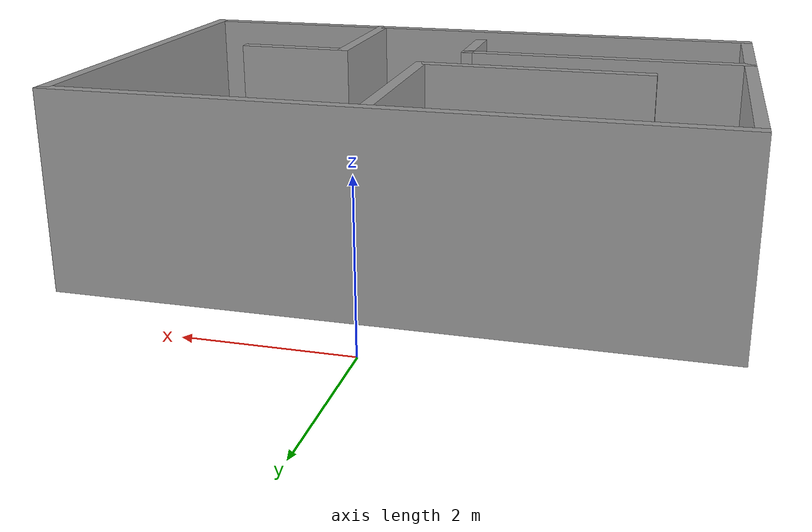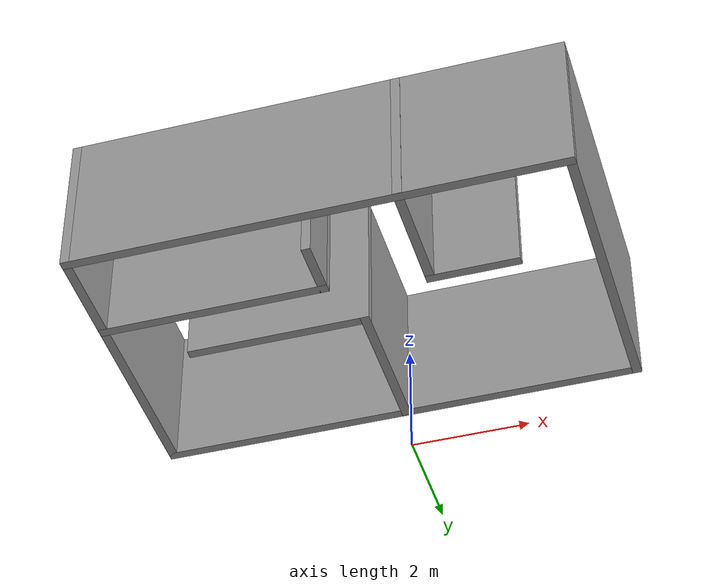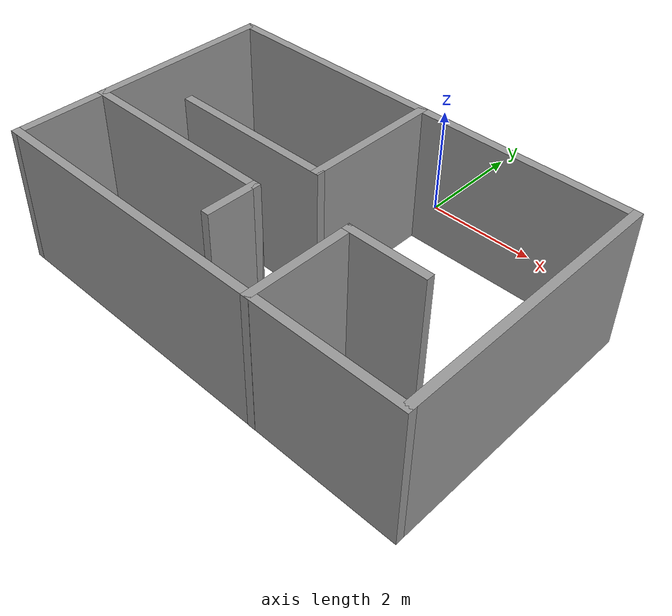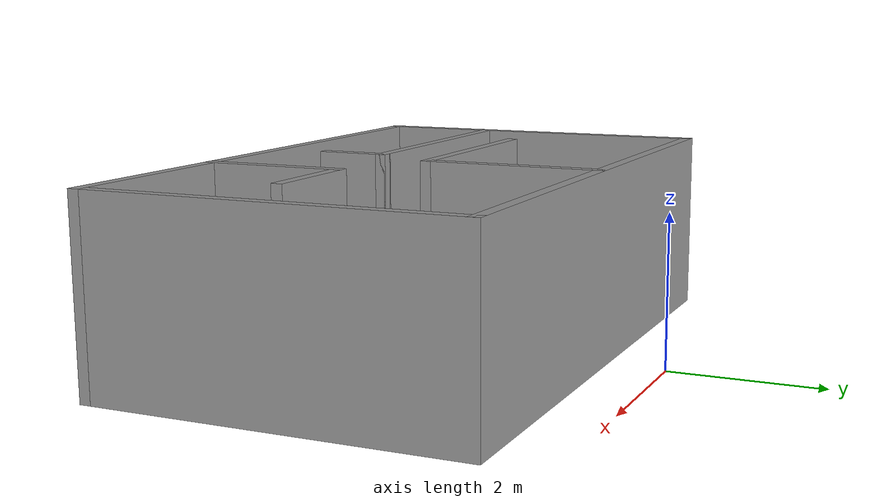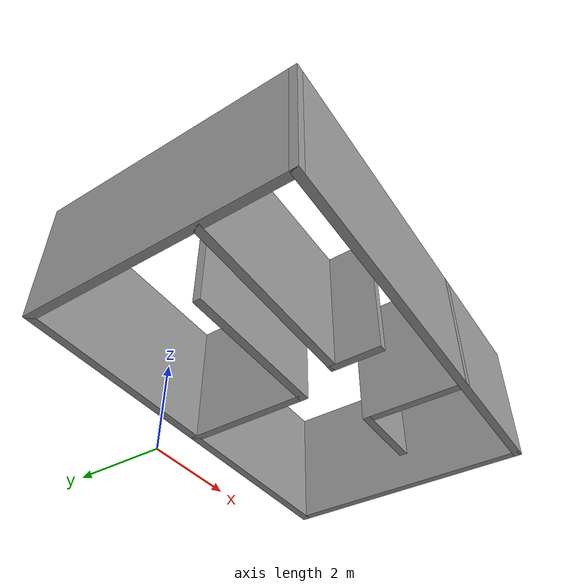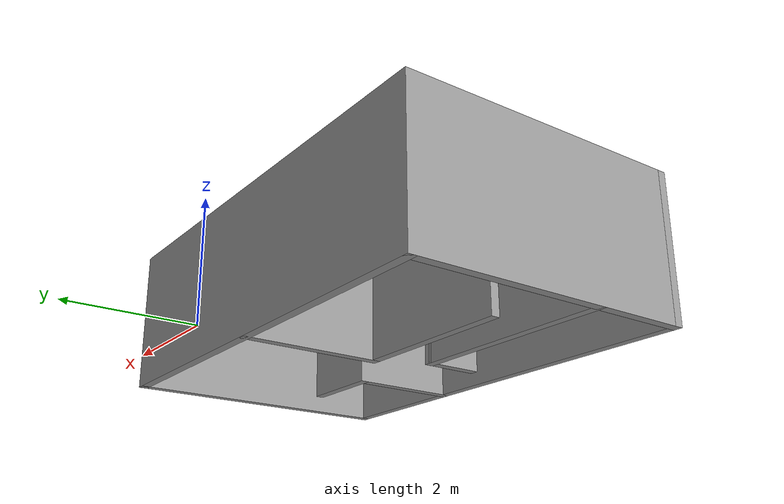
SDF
<?xml version='1.0'?>
<sdf version='1.7'>
  <model name='room'>
    <pose>0.035 -2.88387 0 0 -0 0</pose>
    <link name='Wall_0'>
      <collision name='Wall_0_Collision'>
        <geometry>
          <box>
            <size>8 0.15 2.5</size>
          </box>
        </geometry>
        <pose>0 0 1.25 0 -0 0</pose>
      </collision>
      <visual name='Wall_0_Visual'>
        <pose>0 0 1.25 0 -0 0</pose>
        <geometry>
          <box>
            <size>8 0.15 2.5</size>
          </box>
        </geometry>
        <material>
          <script>
            <uri>file://media/materials/scripts/gazebo.material</uri>
            <name>Gazebo/Grey</name>
          </script>
          <ambient>1 1 1 1</ambient>
        </material>
        <meta>
          <layer>0</layer>
        </meta>
      </visual>
      <pose>0 2.04387 0 0 -0 0</pose>
    </link>
    <link name='Wall_1'>
      <collision name='Wall_1_Collision'>
        <geometry>
          <box>
            <size>5 0.15 2.5</size>
          </box>
        </geometry>
        <pose>0 0 1.25 0 -0 0</pose>
      </collision>
      <visual name='Wall_1_Visual'>
        <pose>0 0 1.25 0 -0 0</pose>
        <geometry>
          <box>
            <size>5 0.15 2.5</size>
          </box>
        </geometry>
        <material>
          <script>
            <uri>file://media/materials/scripts/gazebo.material</uri>
            <name>Gazebo/Grey</name>
          </script>
          <ambient>1 1 1 1</ambient>
        </material>
        <meta>
          <layer>0</layer>
        </meta>
      </visual>
      <pose>3.925 -0.381133 0 0 -0 -1.5708</pose>
    </link>
    <link name='Wall_10'>
      <collision name='Wall_10_Collision'>
        <geometry>
          <box>
            <size>1 0.15 2.5</size>
          </box>
        </geometry>
        <pose>0 0 1.25 0 -0 0</pose>
      </collision>
      <visual name='Wall_10_Visual'>
        <pose>0 0 1.25 0 -0 0</pose>
        <geometry>
          <box>
            <size>1 0.15 2.5</size>
          </box>
        </geometry>
        <material>
          <script>
            <uri>file://media/materials/scripts/gazebo.material</uri>
            <name>Gazebo/Grey</name>
          </script>
          <ambient>1 1 1 1</ambient>
        </material>
        <meta>
          <layer>0</layer>
        </meta>
      </visual>
      <pose>-0.321182 -1.62387 0 0 -0 -1.5708</pose>
    </link>
    <link name='Wall_12'>
      <collision name='Wall_12_Collision'>
        <geometry>
          <box>
            <size>2 0.15 2.5</size>
          </box>
        </geometry>
        <pose>0 0 1.25 0 -0 0</pose>
      </collision>
      <visual name='Wall_12_Visual'>
        <pose>0 0 1.25 0 -0 0</pose>
        <geometry>
          <box>
            <size>2 0.15 2.5</size>
          </box>
        </geometry>
        <material>
          <script>
            <uri>file://media/materials/scripts/gazebo.material</uri>
            <name>Gazebo/Grey</name>
          </script>
          <ambient>1 1 1 1</ambient>
        </material>
        <meta>
          <layer>0</layer>
        </meta>
      </visual>
      <pose>1.32282 -1.88387 0 0 -0 1.5708</pose>
    </link>
    <link name='Wall_13'>
      <collision name='Wall_13_Collision'>
        <geometry>
          <box>
            <size>1.5 0.15 2.5</size>
          </box>
        </geometry>
        <pose>0 0 1.25 0 -0 0</pose>
      </collision>
      <visual name='Wall_13_Visual'>
        <pose>0 0 1.25 0 -0 0</pose>
        <geometry>
          <box>
            <size>1.5 0.15 2.5</size>
          </box>
        </geometry>
        <material>
          <script>
            <uri>file://media/materials/scripts/gazebo.material</uri>
            <name>Gazebo/Grey</name>
          </script>
          <ambient>1 1 1 1</ambient>
        </material>
        <meta>
          <layer>0</layer>
        </meta>
      </visual>
      <pose>1.99782 -0.958867 0 0 -0 0</pose>
    </link>
    <link name='Wall_2'>
      <collision name='Wall_2_Collision'>
        <geometry>
          <box>
            <size>8 0.15 2.5</size>
          </box>
        </geometry>
        <pose>0 0 1.25 0 -0 0</pose>
      </collision>
      <visual name='Wall_2_Visual'>
        <pose>0 0 1.25 0 -0 0</pose>
        <geometry>
          <box>
            <size>8 0.15 2.5</size>
          </box>
        </geometry>
        <material>
          <script>
            <uri>file://media/materials/scripts/gazebo.material</uri>
            <name>Gazebo/Grey</name>
          </script>
          <ambient>1 1 1 1</ambient>
        </material>
        <meta>
          <layer>0</layer>
        </meta>
      </visual>
      <pose>0 -2.80613 0 0 -0 3.14159</pose>
    </link>
    <link name='Wall_3'>
      <collision name='Wall_3_Collision'>
        <geometry>
          <box>
            <size>5 0.15 2.5</size>
          </box>
        </geometry>
        <pose>0 0 1.25 0 -0 0</pose>
      </collision>
      <visual name='Wall_3_Visual'>
        <pose>0 0 1.25 0 -0 0</pose>
        <geometry>
          <box>
            <size>5 0.15 2.5</size>
          </box>
        </geometry>
        <material>
          <script>
            <uri>file://media/materials/scripts/gazebo.material</uri>
            <name>Gazebo/Grey</name>
          </script>
          <ambient>1 1 1 1</ambient>
        </material>
        <meta>
          <layer>0</layer>
        </meta>
      </visual>
      <pose>-3.925 -0.381133 0 0 -0 1.5708</pose>
    </link>
    <link name='Wall_5'>
      <collision name='Wall_5_Collision'>
        <geometry>
          <box>
            <size>2.5 0.15 2.5</size>
          </box>
        </geometry>
        <pose>0 0 1.25 0 -0 0</pose>
      </collision>
      <visual name='Wall_5_Visual'>
        <pose>0 0 1.25 0 -0 0</pose>
        <geometry>
          <box>
            <size>2.5 0.15 2.5</size>
          </box>
        </geometry>
        <material>
          <script>
            <uri>file://media/materials/scripts/gazebo.material</uri>
            <name>Gazebo/Grey</name>
          </script>
          <ambient>1 1 1 1</ambient>
        </material>
        <meta>
          <layer>0</layer>
        </meta>
      </visual>
      <pose>0.099077 0.853555 0 0 -0 -1.5708</pose>
    </link>
    <link name='Wall_6'>
      <collision name='Wall_6_Collision'>
        <geometry>
          <box>
            <size>3 0.15 2.5</size>
          </box>
        </geometry>
        <pose>0 0 1.25 0 -0 0</pose>
      </collision>
      <visual name='Wall_6_Visual'>
        <pose>0 0 1.25 0 -0 0</pose>
        <geometry>
          <box>
            <size>3 0.15 2.5</size>
          </box>
        </geometry>
        <material>
          <script>
            <uri>file://media/materials/scripts/gazebo.material</uri>
            <name>Gazebo/Grey</name>
          </script>
          <ambient>1 1 1 1</ambient>
        </material>
        <meta>
          <layer>0</layer>
        </meta>
      </visual>
      <pose>-1.32592 -0.321445 0 0 -0 3.14159</pose>
    </link>
    <link name='Wall_9'>
      <collision name='Wall_9_Collision'>
        <geometry>
          <box>
            <size>3.75 0.15 2.5</size>
          </box>
        </geometry>
        <pose>0 0 1.25 0 -0 0</pose>
      </collision>
      <visual name='Wall_9_Visual'>
        <pose>0 0 1.25 0 -0 0</pose>
        <geometry>
          <box>
            <size>3.75 0.15 2.5</size>
          </box>
        </geometry>
        <material>
          <script>
            <uri>file://media/materials/scripts/gazebo.material</uri>
            <name>Gazebo/Grey</name>
          </script>
          <ambient>1 1 1 1</ambient>
        </material>
        <meta>
          <layer>0</layer>
        </meta>
      </visual>
      <pose>-2.12118 -1.19887 0 0 -0 0</pose>
    </link>
    <static>1</static>
  </model>
</sdf>
